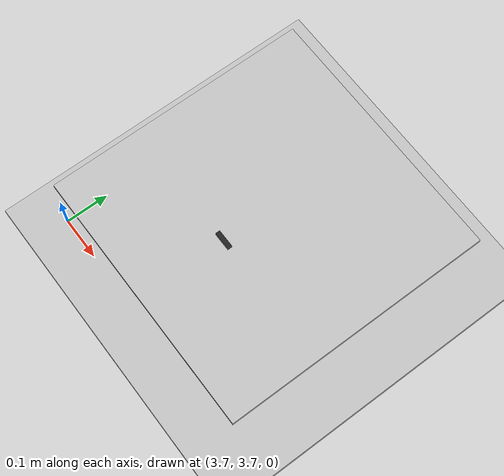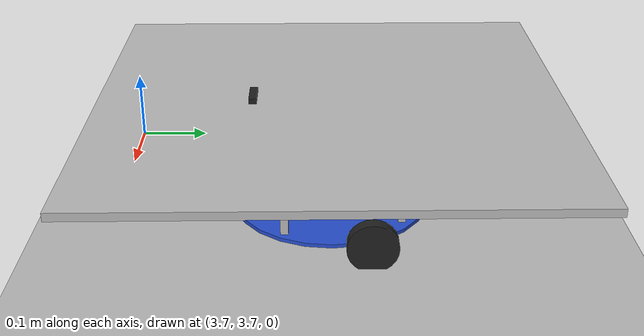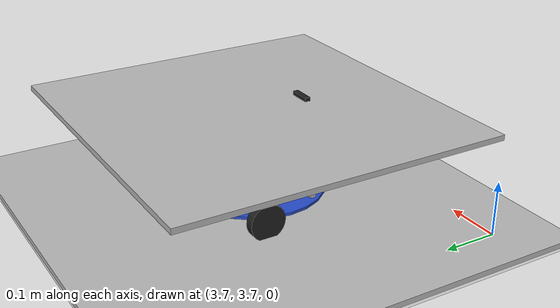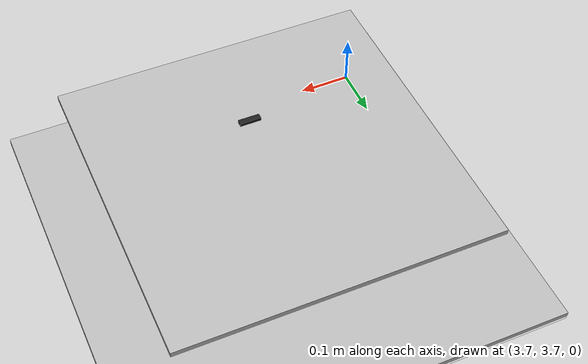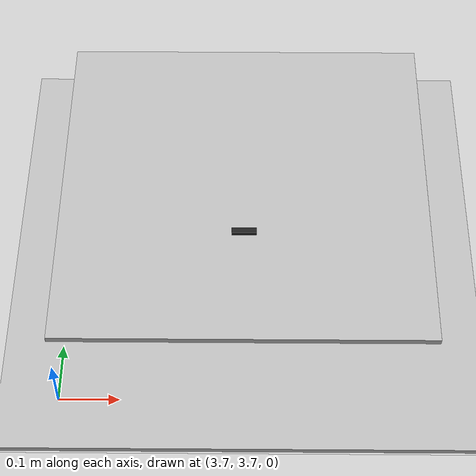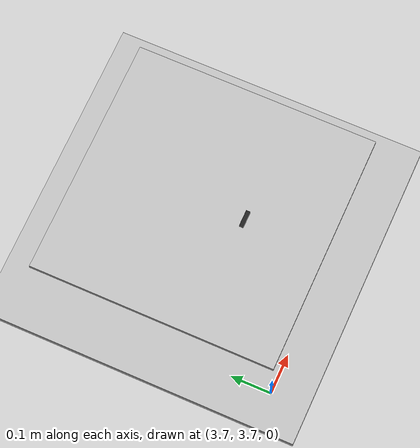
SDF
<?xml version="1.0" ?>
<sdf version="1.6">
  <world name="world">
    <!-- A global light source -->
    <include>
      <uri>model://sun</uri>
    </include>
    <!-- A ground plane -->
    <include>
      <uri>model://ground_plane</uri>
    </include>
    <model name='logo_ground'>
      <include>
        <uri>model://cuhk_logo_ground</uri>
	      <pose> 0 0 0.01 0 0 0</pose>
      </include>
    </model>
     <model name='pad_car'>
      <include>
        <uri>model://pad_car</uri>
	      <pose> 4 4 0.01 0 0 -1.5707963 </pose>
      </include>
    </model>
    <physics name='default_physics' default='0' type='ode'>
      <gravity>0 0 -9.8066</gravity>
      <ode>
        <solver>
          <type>quick</type>
          <iters>150</iters>
          <sor>1.3</sor>
          <use_dynamic_moi_rescaling>0</use_dynamic_moi_rescaling>
        </solver>
        <constraints>
          <cfm>0.00001</cfm>
          <erp>0.2</erp>
          <contact_max_correcting_vel>1000</contact_max_correcting_vel>
          <contact_surface_layer>0.01</contact_surface_layer>
        </constraints>
      </ode>
      <max_step_size>0.004</max_step_size>
      <real_time_factor>1000.0</real_time_factor>
      <real_time_update_rate>250</real_time_update_rate>
      <magnetic_field>6.0e-6 2.3e-5 -4.2e-5</magnetic_field>
    </physics>
  </world>
</sdf>

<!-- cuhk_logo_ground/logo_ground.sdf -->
<sdf version="1.6">
  <model name="logo_ground">
    <pose>0 0 0.01 0 0 0</pose>
    <static>true</static>
    <link name="link">
      <inertial>
        <mass>0.5</mass>
        <inertia>
          <ixx>0.001</ixx>
          <ixy>0</ixy>
          <ixz>0</ixz>
          <iyy>0.001</iyy>
          <iyz>0</iyz>
          <izz>0.001</izz>
        </inertia>
      </inertial>
      <collision name="collision">
        <geometry>
          <box>
            <size>100 100 .01</size>
          </box>
        </geometry>
        <max_contacts>100</max_contacts>
        <surface>
          <bounce/>
          <friction>
            <ode/>
          </friction>
          <contact>
            <ode/>
          </contact>
        </surface>
      </collision>
      <visual name="visual">
        <cast_shadows>false</cast_shadows>
        <geometry>
          <box>
            <size>25 25 .01</size>
          </box>
        </geometry>
        <material>
          <script>
            <uri>model://cuhk_logo_ground/materials/scripts</uri>
            <uri>model://cuhk_logo_ground/materials/textures</uri>
            <name>Cube/logo_ground</name>
          </script>
        </material>
      </visual>
    </link>
  </model>
</sdf>

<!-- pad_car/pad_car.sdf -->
<sdf version='1.6'>
  <model name='mrobot'>
    <link name='base_footprint'>
      <pose frame=''>0 0 0 0 -0 0</pose>
      <inertial>
        <pose frame=''>0.013545 0 0.078721 0 -0 0</pose>
        <mass>0.818</mass>
        <inertia>
          <ixx>0.0171712</ixx>
          <ixy>7.34289e-22</ixy>
          <ixz>-0.00106581</ixz>
          <iyy>0.0181523</iyy>
          <iyz>2.47856e-21</iyz>
          <izz>0.0178163</izz>
        </inertia>
      </inertial>
      <collision name='base_footprint_fixed_joint_lump__base_link_collision'>
        <pose frame=''>0 0 0.033 0 -0 0</pose>
        <geometry>
          <cylinder>
            <length>0.005</length>
            <radius>0.13</radius>
          </cylinder>
        </geometry>
        <surface>
          <contact>
            <ode/>
          </contact>
          <friction>
            <ode/>
          </friction>
        </surface>
      </collision>
      <collision name='base_footprint_fixed_joint_lump__front_caster_link_collision_1'>
        <pose frame=''>0.12 0 0.017 0 -0 0</pose>
        <geometry>
          <sphere>
            <radius>0.016</radius>
          </sphere>
        </geometry>
        <surface>
          <contact>
            <ode/>
          </contact>
          <friction>
            <ode/>
          </friction>
        </surface>
      </collision>
      <collision name='base_footprint_fixed_joint_lump__plate_1_link_collision_2'>
        <pose frame=''>0 0 0.103 0 -0 0</pose>
        <geometry>
          <cylinder>
            <length>0.005</length>
            <radius>0.13</radius>
          </cylinder>
        </geometry>
        <surface>
          <contact>
            <ode/>
          </contact>
          <friction>
            <ode/>
          </friction>
        </surface>
      </collision>
      <collision name='base_footprint_fixed_joint_lump__plate_2_link_collision_3'>
        <pose frame=''>0 0 0.173 0 -0 0</pose>
        <geometry>
          <box>
            <size>0.6 0.6 .01</size>
          </box>
        </geometry>
        <surface>
          <contact>
            <ode/>
          </contact>
          <friction>
            <ode/>
          </friction>
        </surface>
      </collision>
      <collision name='base_footprint_fixed_joint_lump__camera_link_collision_4'>
        <pose frame=''>0.1 0 0.193 0 -0 0</pose>
        <geometry>
          <box>
            <size>0.01 0.04 0.04</size>
          </box>
        </geometry>
        <surface>
          <contact>
            <ode/>
          </contact>
          <friction>
            <ode/>
          </friction>
        </surface>
      </collision>
      <collision name='base_footprint_fixed_joint_lump__standoff_2in_1_link_collision_5'>
        <pose frame=''>-0.09 -0.07 0.068 0 -0 0</pose>
        <geometry>
          <box>
            <size>0.01 0.01 0.07</size>
          </box>
        </geometry>
      </collision>
      <collision name='base_footprint_fixed_joint_lump__standoff_2in_5_link_collision_6'>
        <pose frame=''>-0.09 -0.07 0.138 0 -0 0</pose>
        <geometry>
          <box>
            <size>0.01 0.01 0.07</size>
          </box>
        </geometry>
      </collision>
      <collision name='base_footprint_fixed_joint_lump__standoff_2in_2_link_collision_7'>
        <pose frame=''>-0.09 0.07 0.068 0 -0 0</pose>
        <geometry>
          <box>
            <size>0.01 0.01 0.07</size>
          </box>
        </geometry>
      </collision>
      <collision name='base_footprint_fixed_joint_lump__standoff_2in_6_link_collision_8'>
        <pose frame=''>-0.09 0.07 0.138 0 -0 0</pose>
        <geometry>
          <box>
            <size>0.01 0.01 0.07</size>
          </box>
        </geometry>
      </collision>
      <collision name='base_footprint_fixed_joint_lump__standoff_2in_3_link_collision_9'>
        <pose frame=''>0.06 -0.1 0.068 0 -0 0</pose>
        <geometry>
          <box>
            <size>0.01 0.01 0.07</size>
          </box>
        </geometry>
      </collision>
      <collision name='base_footprint_fixed_joint_lump__standoff_2in_7_link_collision_10'>
        <pose frame=''>0.06 -0.1 0.138 0 -0 0</pose>
        <geometry>
          <box>
            <size>0.01 0.01 0.07</size>
          </box>
        </geometry>
      </collision>
      <collision name='base_footprint_fixed_joint_lump__standoff_2in_4_link_collision_11'>
        <pose frame=''>0.06 0.1 0.068 0 -0 0</pose>
        <geometry>
          <box>
            <size>0.01 0.01 0.07</size>
          </box>
        </geometry>
      </collision>
      <collision name='base_footprint_fixed_joint_lump__standoff_2in_8_link_collision_12'>
        <pose frame=''>0.06 0.1 0.138 0 -0 0</pose>
        <geometry>
          <box>
            <size>0.01 0.01 0.07</size>
          </box>
        </geometry>
      </collision>
      <visual name='base_footprint_visual'>
        <pose frame=''>0 0 0 0 -0 0</pose>
        <geometry>
          <box>
            <size>0.001 0.001 0.001</size>
          </box>
        </geometry>
      </visual>
      <visual name='base_footprint_fixed_joint_lump__base_link_visual_1'>
        <pose frame=''>0 0 0.033 0 -0 0</pose>
        <geometry>
          <cylinder>
            <length>0.005</length>
            <radius>0.13</radius>
          </cylinder>
        </geometry>
        <material>
          <script>
            <name>Gazebo/Blue</name>
            <uri>file://media/materials/scripts/gazebo.material</uri>
          </script>
        </material>
      </visual>
      <visual name='base_footprint_fixed_joint_lump__front_caster_link_visual_2'>
        <pose frame=''>0.12 0 0.017 0 -0 0</pose>
        <geometry>
          <sphere>
            <radius>0.016</radius>
          </sphere>
        </geometry>
        <material>
          <script>
            <name>Gazebo/Black</name>
            <uri>file://media/materials/scripts/gazebo.material</uri>
          </script>
        </material>
      </visual>
      <visual name='base_footprint_fixed_joint_lump__plate_1_link_visual_3'>
        <pose frame=''>0 0 0.103 0 -0 0</pose>
        <geometry>
          <cylinder>
            <length>0.005</length>
            <radius>0.13</radius>
          </cylinder>
        </geometry>
        <material>
          <script>
            <name>Gazebo/Blue</name>
            <uri>file://media/materials/scripts/gazebo.material</uri>
          </script>
        </material>
      </visual>
      <visual name='base_footprint_fixed_joint_lump__plate_2_link_visual_4'>
        <pose frame=''>0 0 0.173 0 -0 0</pose>
        <geometry>
          <box>
            <size>0.6 0.6 .01</size>
          </box>
        </geometry>
        <material>
          <script>
            <uri>model://my_landing_pad/materials/scripts</uri>
	          <uri>model://my_landing_pad/materials/textures</uri>
            <name>Cube/my_landing_pad</name>
          </script>
        </material>
      </visual>
      <visual name='base_footprint_fixed_joint_lump__camera_link_visual_5'>
        <pose frame=''>0.1 0 0.18 0 -0 0</pose>
        <geometry>
          <box>
            <size>0.01 0.04 0.01</size>
          </box>
        </geometry>
        <material>
          <script>
            <name>Gazebo/Black</name>
            <uri>file://media/materials/scripts/gazebo.material</uri>
          </script>
        </material>
      </visual>
      <visual name='base_footprint_fixed_joint_lump__standoff_2in_1_link_visual_6'>
        <pose frame=''>-0.09 -0.07 0.068 0 -0 0</pose>
        <geometry>
          <box>
            <size>0.01 0.01 0.07</size>
          </box>
        </geometry>
      </visual>
      <visual name='base_footprint_fixed_joint_lump__standoff_2in_5_link_visual_7'>
        <pose frame=''>-0.09 -0.07 0.138 0 -0 0</pose>
        <geometry>
          <box>
            <size>0.01 0.01 0.07</size>
          </box>
        </geometry>
      </visual>
      <visual name='base_footprint_fixed_joint_lump__standoff_2in_2_link_visual_8'>
        <pose frame=''>-0.09 0.07 0.068 0 -0 0</pose>
        <geometry>
          <box>
            <size>0.01 0.01 0.07</size>
          </box>
        </geometry>
      </visual>
      <visual name='base_footprint_fixed_joint_lump__standoff_2in_6_link_visual_9'>
        <pose frame=''>-0.09 0.07 0.138 0 -0 0</pose>
        <geometry>
          <box>
            <size>0.01 0.01 0.07</size>
          </box>
        </geometry>
      </visual>
      <visual name='base_footprint_fixed_joint_lump__standoff_2in_3_link_visual_10'>
        <pose frame=''>0.06 -0.1 0.068 0 -0 0</pose>
        <geometry>
          <box>
            <size>0.01 0.01 0.07</size>
          </box>
        </geometry>
      </visual>
      <visual name='base_footprint_fixed_joint_lump__standoff_2in_7_link_visual_11'>
        <pose frame=''>0.06 -0.1 0.138 0 -0 0</pose>
        <geometry>
          <box>
            <size>0.01 0.01 0.07</size>
          </box>
        </geometry>
      </visual>
      <visual name='base_footprint_fixed_joint_lump__standoff_2in_4_link_visual_12'>
        <pose frame=''>0.06 0.1 0.068 0 -0 0</pose>
        <geometry>
          <box>
            <size>0.01 0.01 0.07</size>
          </box>
        </geometry>
      </visual>
      <visual name='base_footprint_fixed_joint_lump__standoff_2in_8_link_visual_13'>
        <pose frame=''>0.06 0.1 0.138 0 -0 0</pose>
        <geometry>
          <box>
            <size>0.01 0.01 0.07</size>
          </box>
        </geometry>
      </visual>
      <velocity_decay/>
      <velocity_decay/>
      <velocity_decay/>
      <velocity_decay/>
      <velocity_decay/>
      <gravity>1</gravity>
      <velocity_decay/>

      <sensor name='camera_on_car' type='camera'>
        <update_rate>30</update_rate>
        <camera name='head'>
          <pose frame=''>0 0 0 0 -1.57 0</pose>
          <horizontal_fov>1.39626</horizontal_fov>
          <image>
            <width>1280</width>
            <height>720</height>
            <format>R8G8B8</format>
          </image>
          <clip>
            <near>0.02</near>
            <far>300</far>
          </clip>
          <noise>
            <type>gaussian</type>
            <mean>0</mean>
            <stddev>0.007</stddev>
          </noise>
        </camera>
        <plugin name='gazebo_camera' filename='libgazebo_ros_camera.so'>
          <alwaysOn>1</alwaysOn>
          <updateRate>0.0</updateRate>
          <cameraName>/camera_on_car</cameraName>
          <imageTopicName>image_raw_from_car</imageTopicName>
          <cameraInfoTopicName>camera_info_on_car</cameraInfoTopicName>
          <frameName>camera_link</frameName>
          <hackBaseline>0.07</hackBaseline>
          <distortionK1>0.0</distortionK1>
          <distortionK2>0.0</distortionK2>
          <distortionK3>0.0</distortionK3>
          <distortionT1>0.0</distortionT1>
          <distortionT2>0.0</distortionT2>
        </plugin>
        <pose frame=''>0.1 0 0.193 0 -0 0</pose>
      </sensor>
    </link>
    <link name='wheel_left_link'>
      <pose frame=''>-0.05 -0.13 0.033 0 -0 0</pose>
      <inertial>
        <pose frame=''>0 0 0 0 -0 0</pose>
        <mass>0.1</mass>
        <inertia>
          <ixx>2.96333e-05</ixx>
          <ixy>0</ixy>
          <ixz>0</ixz>
          <iyy>2.96333e-05</iyy>
          <iyz>0</iyz>
          <izz>5.445e-05</izz>
        </inertia>
      </inertial>
      <collision name='wheel_left_link_collision'>
        <pose frame=''>0 0 0 1.5708 -0 0</pose>
        <geometry>
          <cylinder>
            <length>0.017</length>
            <radius>0.033</radius>
          </cylinder>
        </geometry>
        <surface>
          <contact>
            <ode/>
          </contact>
          <friction>
            <ode/>
          </friction>
        </surface>
      </collision>
      <visual name='wheel_left_link_visual'>
        <pose frame=''>0 0 0 1.5708 -0 0</pose>
        <geometry>
          <cylinder>
            <length>0.017</length>
            <radius>0.033</radius>
          </cylinder>
        </geometry>
        <material>
          <script>
            <name>Gazebo/Black</name>
            <uri>file://media/materials/scripts/gazebo.material</uri>
          </script>
        </material>
      </visual>
      <gravity>1</gravity>
      <velocity_decay/>
    </link>
    <joint name='base_to_wheel_left_joint' type='revolute'>
      <child>wheel_left_link</child>
      <parent>base_footprint</parent>
      <axis>
        <xyz>1 0 0</xyz>
        <limit>
          <lower>-1e+16</lower>
          <upper>1e+16</upper>
        </limit>
        <dynamics>
          <spring_reference>0</spring_reference>
          <spring_stiffness>0</spring_stiffness>
        </dynamics>
        <use_parent_model_frame>0</use_parent_model_frame>
      </axis>
    </joint>
    <link name='wheel_right_link'>
      <pose frame=''>-0.05 0.13 0.033 0 -0 0</pose>
      <inertial>
        <pose frame=''>0 0 0 0 -0 0</pose>
        <mass>0.1</mass>
        <inertia>
          <ixx>2.96333e-05</ixx>
          <ixy>0</ixy>
          <ixz>0</ixz>
          <iyy>2.96333e-05</iyy>
          <iyz>0</iyz>
          <izz>5.445e-05</izz>
        </inertia>
      </inertial>
      <collision name='wheel_right_link_collision'>
        <pose frame=''>0 0 0 1.5708 -0 0</pose>
        <geometry>
          <cylinder>
            <length>0.017</length>
            <radius>0.033</radius>
          </cylinder>
        </geometry>
        <surface>
          <contact>
            <ode/>
          </contact>
          <friction>
            <ode/>
          </friction>
        </surface>
      </collision>
      <visual name='wheel_right_link_visual'>
        <pose frame=''>0 0 0 1.5708 -0 0</pose>
        <geometry>
          <cylinder>
            <length>0.017</length>
            <radius>0.033</radius>
          </cylinder>
        </geometry>
        <material>
          <script>
            <name>Gazebo/Black</name>
            <uri>file://media/materials/scripts/gazebo.material</uri>
          </script>
        </material>
      </visual>
      <gravity>1</gravity>
      <velocity_decay/>
    </link>
    <joint name='base_to_wheel_right_joint' type='revolute'>
      <child>wheel_right_link</child>
      <parent>base_footprint</parent>
      <axis>
        <xyz>1 0 0</xyz>
        <limit>
          <lower>-1e+16</lower>
          <upper>1e+16</upper>
        </limit>
        <dynamics>
          <spring_reference>0</spring_reference>
          <spring_stiffness>0</spring_stiffness>
        </dynamics>
        <use_parent_model_frame>0</use_parent_model_frame>
      </axis>
    </joint>
    <static>0</static>
    <plugin name='differential_drive_controller' filename='libgazebo_ros_diff_drive.so'>
      <rosDebugLevel>Debug</rosDebugLevel>
      <publishWheelTF>1</publishWheelTF>
      <robotNamespace>/</robotNamespace>
      <publishTf>1</publishTf>
      <publishWheelJointState>1</publishWheelJointState>
      <alwaysOn>1</alwaysOn>
      <updateRate>100.0</updateRate>
      <legacyMode>1</legacyMode>
      <leftJoint>base_to_wheel_left_joint</leftJoint>
      <rightJoint>base_to_wheel_right_joint</rightJoint>
      <wheelSeparation>0.26</wheelSeparation>
      <wheelDiameter>0.066</wheelDiameter>
      <broadcastTF>1</broadcastTF>
      <wheelTorque>30</wheelTorque>
      <wheelAcceleration>1.8</wheelAcceleration>
      <commandTopic>cmd_vel</commandTopic>
      <odometryFrame>odom</odometryFrame>
      <odometryTopic>odom</odometryTopic>
      <robotBaseFrame>base_footprint</robotBaseFrame>
    </plugin>
  </model>
</sdf>
